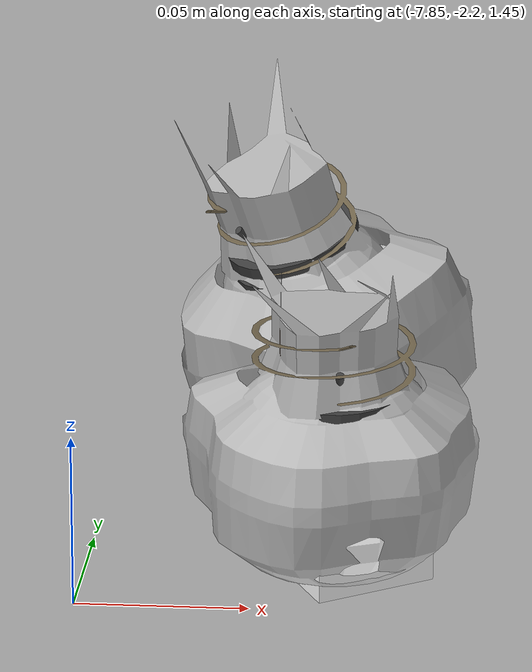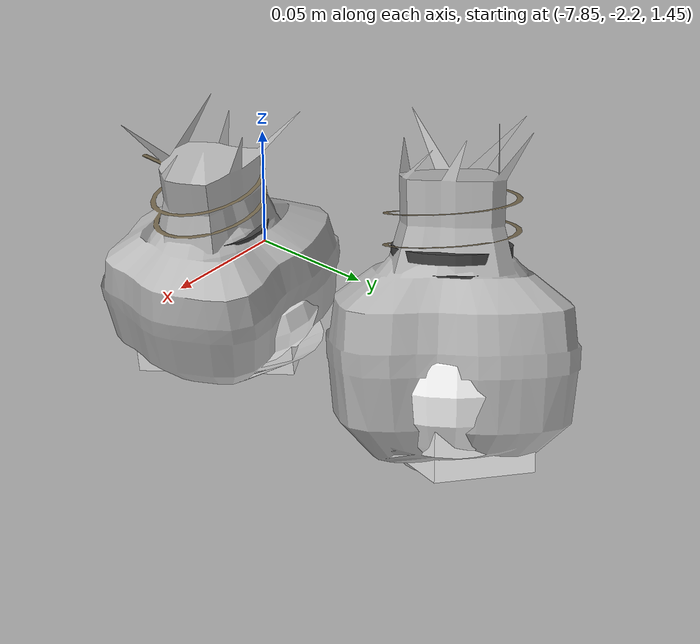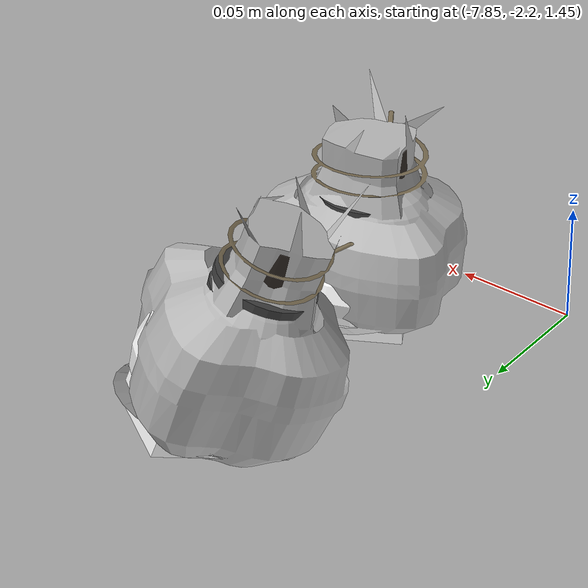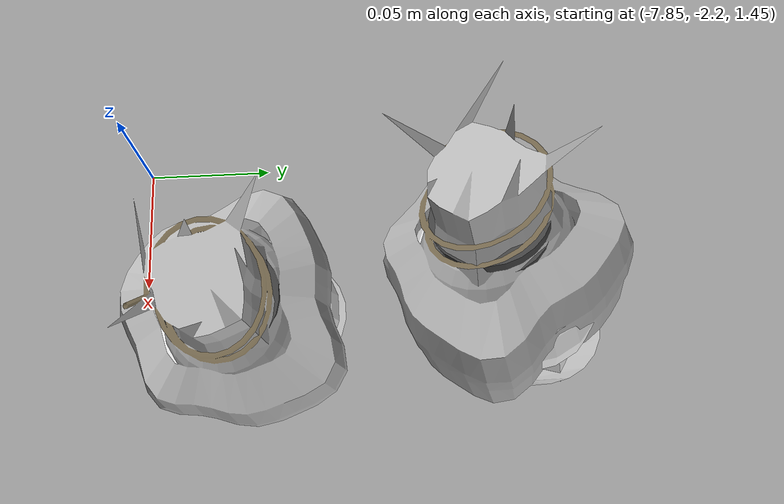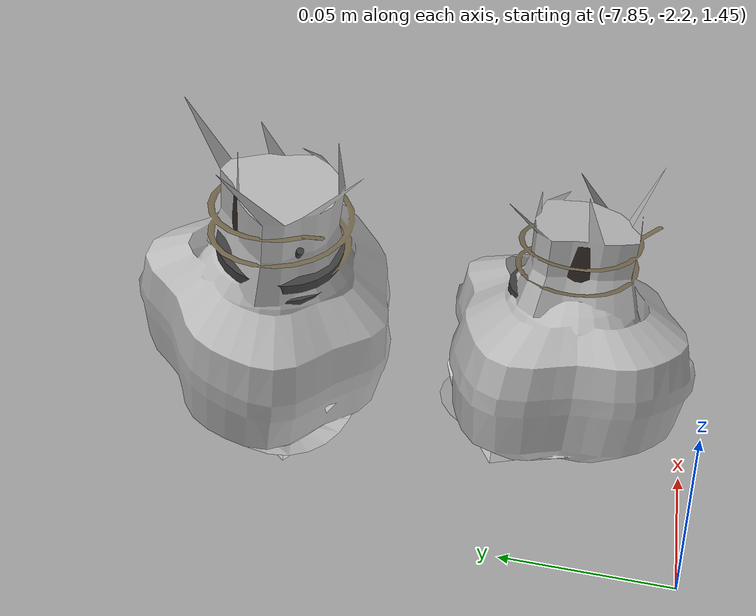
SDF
<sdf version="1.11">
 <world name="peach_orchard">
  <model name="ground">
   <static>true</static>
   <link name="link">
    <visual name="soil">
     <geometry><plane><normal>0 0 1</normal><size>32 22</size></plane></geometry>
     <material>
      <ambient>1 1 1 1</ambient>
      <diffuse>1 1 1 1</diffuse>
      <specular>0.1 0.1 0.1 1</specular>
      <pbr>
       <metal>
        <albedo_map>textures/soil_albedo.png</albedo_map>
        <normal_map type="tangent">textures/soil_normal.png</normal_map>
        <roughness>0.95</roughness>
        <metalness>0</metalness>
       </metal>
      </pbr>
     </material>
    </visual>
    <collision name="c_soil">
     <geometry><plane><normal>0 0 1</normal><size>32 22</size></plane></geometry>
    </collision>
   </link>
  </model>
  <model name="peach_tree_r0_t2_07">
   <pose>-7.78 -2.15592 1.45 0 0.0809837 -1.38601</pose>
   <static>true</static>
   <link name="bag">
    <visual name="bag_mesh">
     <pose>0 0 0.0384397 0 0 -0</pose>
     <geometry>
      <mesh><uri>model://peach_sim/meshes/bagged_peach.glb</uri><scale>0.996966 1.21854 0.873629</scale></mesh>
     </geometry>
    </visual>
    <visual name="body">
     <pose>0 0 0.0204397 0 0 0</pose>
     <geometry><ellipsoid><radii>0.0373862 0.0316821 0.0220748</radii></ellipsoid></geometry>
     <material>
      <ambient>1 1 1 1</ambient>
      <diffuse>1 1 1 1</diffuse>
      <specular>0.1 0.1 0.1 1</specular>
      <pbr>
       <metal>
        <albedo_map>textures/paper_bag_albedo.png</albedo_map>
        <normal_map type="tangent">textures/paper_bag_normal.png</normal_map>
        <roughness>0.72</roughness>
        <metalness>0</metalness>
       </metal>
      </pbr>
     </material>
    </visual>
    <visual name="bottom_fold">
     <pose>0 0 0.012 0 0 0.35</pose>
     <geometry><box><size>0.0579487 0.0364344 0.022</size></box></geometry>
     <material>
      <ambient>1 1 1 1</ambient>
      <diffuse>1 1 1 1</diffuse>
      <specular>0.1 0.1 0.1 1</specular>
      <pbr>
       <metal>
        <albedo_map>textures/paper_bag_albedo.png</albedo_map>
        <normal_map type="tangent">textures/paper_bag_normal.png</normal_map>
        <roughness>0.8</roughness>
        <metalness>0</metalness>
       </metal>
      </pbr>
     </material>
    </visual>
    <visual name="fruit">
     <pose>0 0 0.0212817 0 0 0</pose>
     <geometry><sphere><radius>0.028373</radius></sphere></geometry>
     <material>
      <ambient>1 1 1 1</ambient>
      <diffuse>1 1 1 1</diffuse>
      <specular>0.1 0.1 0.1 1</specular>
      <pbr>
       <metal>
        <albedo_map>textures/fruit_skin_albedo.png</albedo_map>
        <normal_map type="tangent">textures/fruit_skin_normal.png</normal_map>
        <roughness>0.55</roughness>
        <metalness>0</metalness>
       </metal>
      </pbr>
     </material>
    </visual>
    <visual name="neck">
     <pose>0 0 0.0498793 0 0 0</pose>
     <geometry><cylinder><radius>0.013</radius><length>0.018</length></cylinder></geometry>
     <material>
      <ambient>1 1 1 1</ambient>
      <diffuse>1 1 1 1</diffuse>
      <specular>0.1 0.1 0.1 1</specular>
      <pbr>
       <metal>
        <albedo_map>textures/paper_bag_albedo.png</albedo_map>
        <normal_map type="tangent">textures/paper_bag_normal.png</normal_map>
        <roughness>0.75</roughness>
        <metalness>0</metalness>
       </metal>
      </pbr>
     </material>
    </visual>
    <visual name="gather">
     <pose>0 0 0.0308793 0 0 0</pose>
     <geometry><cylinder><radius>0.019</radius><length>0.02</length></cylinder></geometry>
     <material>
      <ambient>1 1 1 1</ambient>
      <diffuse>1 1 1 1</diffuse>
      <specular>0.1 0.1 0.1 1</specular>
      <pbr>
       <metal>
        <albedo_map>textures/paper_bag_albedo.png</albedo_map>
        <normal_map type="tangent">textures/paper_bag_normal.png</normal_map>
        <roughness>0.8</roughness>
        <metalness>0</metalness>
       </metal>
      </pbr>
     </material>
    </visual>
    <visual name="inner_paper">
     <pose>0 0 0.0548793 0 0 0</pose>
     <geometry><cylinder><radius>0.01</radius><length>0.008</length></cylinder></geometry>
     <material>
      <ambient>0.180392 0.14902 0.133333 1</ambient>
      <diffuse>0.180392 0.14902 0.133333 1</diffuse>
      <specular>0.1 0.1 0.1 1</specular>
     </material>
    </visual>
    <visual name="wire_0">
     <pose>0 0 0.0448793 0 0 0</pose>
     <geometry><cylinder><radius>0.0205</radius><length>0.0035</length></cylinder></geometry>
     <material>
      <ambient>0.25 0.25 0.25 1</ambient>
      <diffuse>0.25 0.25 0.25 1</diffuse>
      <specular>0.1 0.1 0.1 1</specular>
     </material>
    </visual>
    <visual name="wire_1">
     <pose>0 0 0.0518793 0 0 0</pose>
     <geometry><cylinder><radius>0.0205</radius><length>0.0035</length></cylinder></geometry>
     <material>
      <ambient>0.25 0.25 0.25 1</ambient>
      <diffuse>0.25 0.25 0.25 1</diffuse>
      <specular>0.1 0.1 0.1 1</specular>
     </material>
    </visual>
    <visual name="wire_tail">
     <pose>0.01 0 0.0528793 0 0.521618 0</pose>
     <geometry><cylinder><radius>0.0012</radius><length>0.026</length></cylinder></geometry>
     <material>
      <ambient>0.25 0.25 0.25 1</ambient>
      <diffuse>0.25 0.25 0.25 1</diffuse>
      <specular>0.1 0.1 0.1 1</specular>
     </material>
    </visual>
    <collision name="c_body">
     <pose>0 0 0.0204397 0 0 0</pose>
     <geometry><cylinder><radius>0.0373862</radius><length>0.0408793</length></cylinder></geometry>
    </collision>
   </link>
  </model>
  <model name="peach_tree_r0_t2_08">
   <pose>-7.78 -2.05236 1.45 0 0.348473 -2.45017</pose>
   <static>true</static>
   <link name="bag">
    <visual name="bag_mesh">
     <pose>0 0 0.0482152 0 0 -0</pose>
     <geometry>
      <mesh><uri>model://peach_sim/meshes/bagged_peach.glb</uri><scale>1.02367 1.20266 1.0958</scale></mesh>
     </geometry>
    </visual>
    <visual name="body">
     <pose>0 0 0.0302152 0 0 0</pose>
     <geometry><ellipsoid><radii>0.0383875 0.0312692 0.0326324</radii></ellipsoid></geometry>
     <material>
      <ambient>1 1 1 1</ambient>
      <diffuse>1 1 1 1</diffuse>
      <specular>0.1 0.1 0.1 1</specular>
      <pbr>
       <metal>
        <albedo_map>textures/paper_bag_albedo.png</albedo_map>
        <normal_map type="tangent">textures/paper_bag_normal.png</normal_map>
        <roughness>0.72</roughness>
        <metalness>0</metalness>
       </metal>
      </pbr>
     </material>
    </visual>
    <visual name="bottom_fold">
     <pose>0 0 0.012 0 0 0.35</pose>
     <geometry><box><size>0.0595006 0.0359596 0.022</size></box></geometry>
     <material>
      <ambient>1 1 1 1</ambient>
      <diffuse>1 1 1 1</diffuse>
      <specular>0.1 0.1 0.1 1</specular>
      <pbr>
       <metal>
        <albedo_map>textures/paper_bag_albedo.png</albedo_map>
        <normal_map type="tangent">textures/paper_bag_normal.png</normal_map>
        <roughness>0.8</roughness>
        <metalness>0</metalness>
       </metal>
      </pbr>
     </material>
    </visual>
    <visual name="fruit">
     <pose>0 0 0.0195054 0 0 0</pose>
     <geometry><sphere><radius>0.0265256</radius></sphere></geometry>
     <material>
      <ambient>1 1 1 1</ambient>
      <diffuse>1 1 1 1</diffuse>
      <specular>0.1 0.1 0.1 1</specular>
      <pbr>
       <metal>
        <albedo_map>textures/fruit_skin_albedo.png</albedo_map>
        <normal_map type="tangent">textures/fruit_skin_normal.png</normal_map>
        <roughness>0.55</roughness>
        <metalness>0</metalness>
       </metal>
      </pbr>
     </material>
    </visual>
    <visual name="neck">
     <pose>0 0 0.0694304 0 0 0</pose>
     <geometry><cylinder><radius>0.013</radius><length>0.018</length></cylinder></geometry>
     <material>
      <ambient>1 1 1 1</ambient>
      <diffuse>1 1 1 1</diffuse>
      <specular>0.1 0.1 0.1 1</specular>
      <pbr>
       <metal>
        <albedo_map>textures/paper_bag_albedo.png</albedo_map>
        <normal_map type="tangent">textures/paper_bag_normal.png</normal_map>
        <roughness>0.75</roughness>
        <metalness>0</metalness>
       </metal>
      </pbr>
     </material>
    </visual>
    <visual name="gather">
     <pose>0 0 0.0504304 0 0 0</pose>
     <geometry><cylinder><radius>0.019</radius><length>0.02</length></cylinder></geometry>
     <material>
      <ambient>1 1 1 1</ambient>
      <diffuse>1 1 1 1</diffuse>
      <specular>0.1 0.1 0.1 1</specular>
      <pbr>
       <metal>
        <albedo_map>textures/paper_bag_albedo.png</albedo_map>
        <normal_map type="tangent">textures/paper_bag_normal.png</normal_map>
        <roughness>0.8</roughness>
        <metalness>0</metalness>
       </metal>
      </pbr>
     </material>
    </visual>
    <visual name="inner_paper">
     <pose>0 0 0.0744304 0 0 0</pose>
     <geometry><cylinder><radius>0.01</radius><length>0.008</length></cylinder></geometry>
     <material>
      <ambient>0.180392 0.14902 0.133333 1</ambient>
      <diffuse>0.180392 0.14902 0.133333 1</diffuse>
      <specular>0.1 0.1 0.1 1</specular>
     </material>
    </visual>
    <visual name="wire_0">
     <pose>0 0 0.0644304 0 0 0</pose>
     <geometry><cylinder><radius>0.0205</radius><length>0.0035</length></cylinder></geometry>
     <material>
      <ambient>0.25 0.25 0.25 1</ambient>
      <diffuse>0.25 0.25 0.25 1</diffuse>
      <specular>0.1 0.1 0.1 1</specular>
     </material>
    </visual>
    <visual name="wire_1">
     <pose>0 0 0.0714304 0 0 0</pose>
     <geometry><cylinder><radius>0.0205</radius><length>0.0035</length></cylinder></geometry>
     <material>
      <ambient>0.25 0.25 0.25 1</ambient>
      <diffuse>0.25 0.25 0.25 1</diffuse>
      <specular>0.1 0.1 0.1 1</specular>
     </material>
    </visual>
    <visual name="wire_tail">
     <pose>0.01 0 0.0724304 0 0.521618 0</pose>
     <geometry><cylinder><radius>0.0012</radius><length>0.026</length></cylinder></geometry>
     <material>
      <ambient>0.25 0.25 0.25 1</ambient>
      <diffuse>0.25 0.25 0.25 1</diffuse>
      <specular>0.1 0.1 0.1 1</specular>
     </material>
    </visual>
    <collision name="c_body">
     <pose>0 0 0.0302152 0 0 0</pose>
     <geometry><cylinder><radius>0.0383875</radius><length>0.0604304</length></cylinder></geometry>
    </collision>
   </link>
  </model>
 </world>
</sdf>
